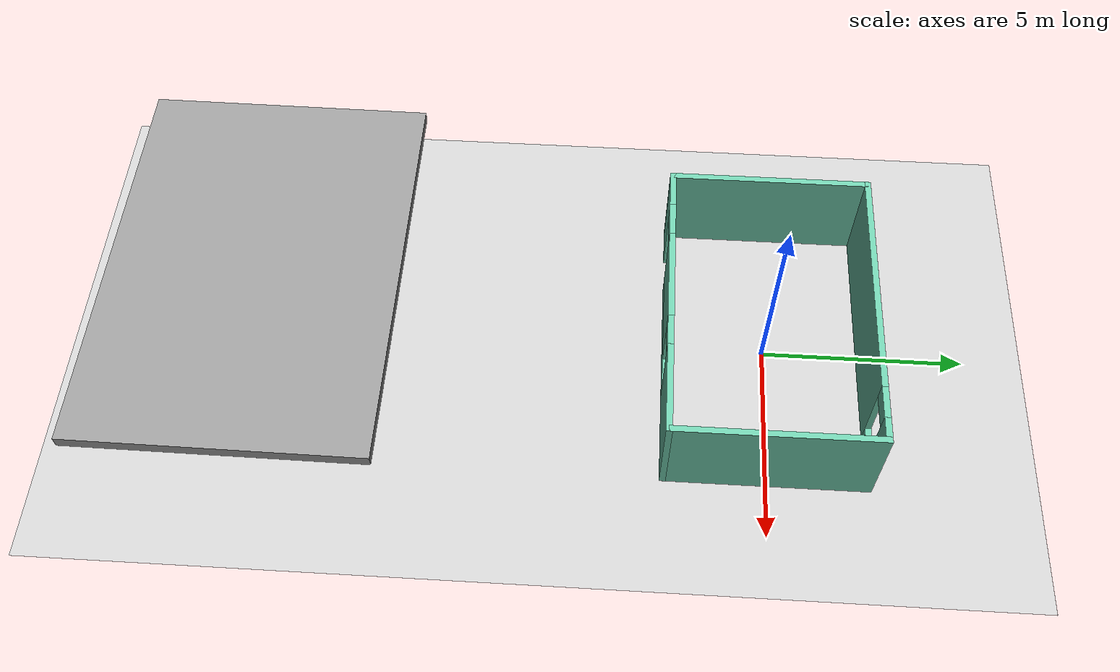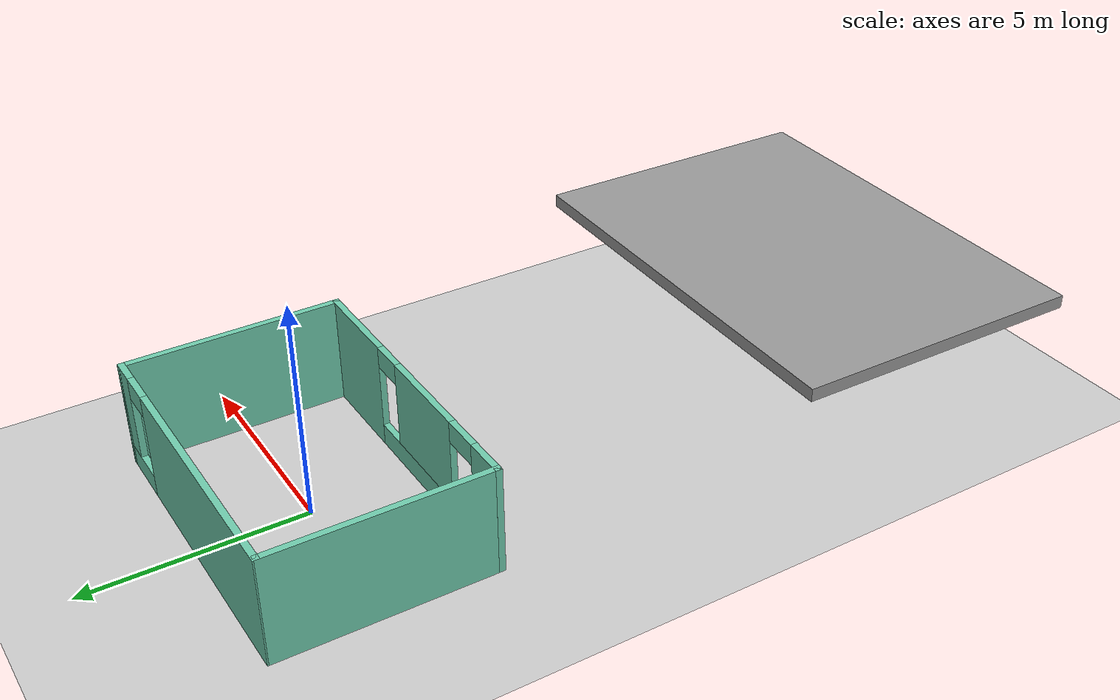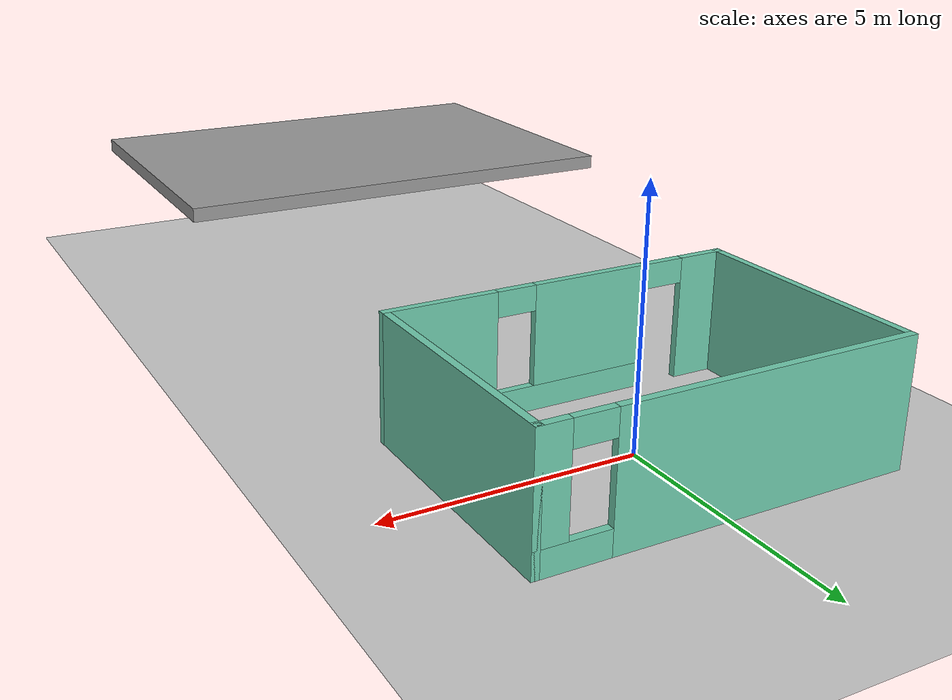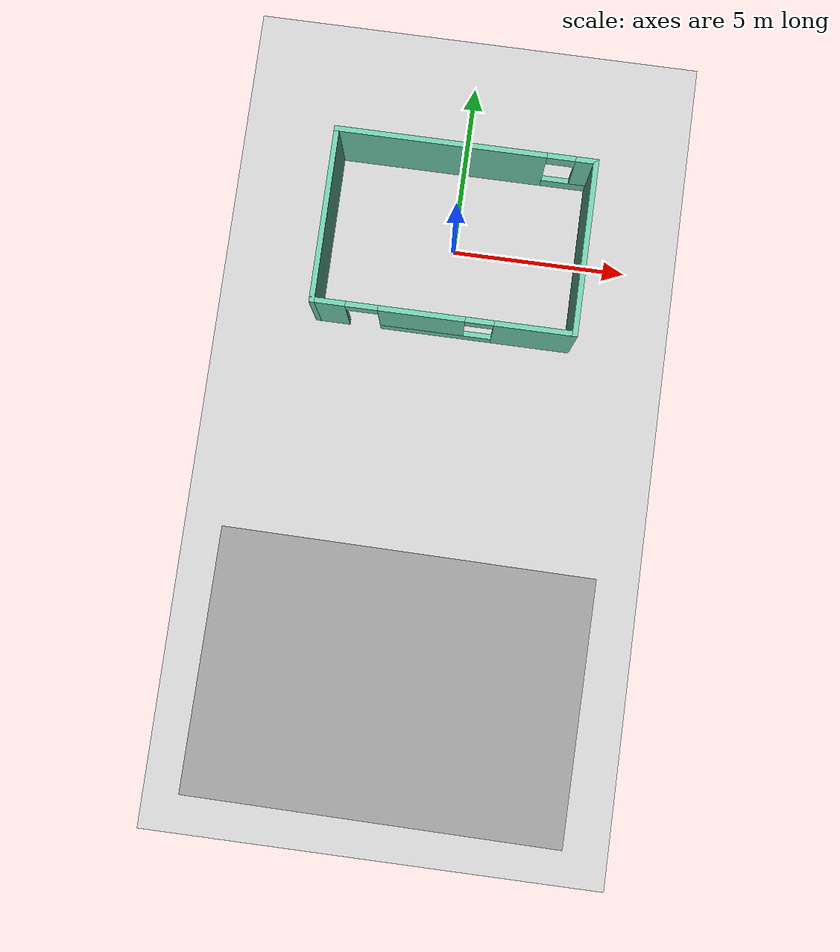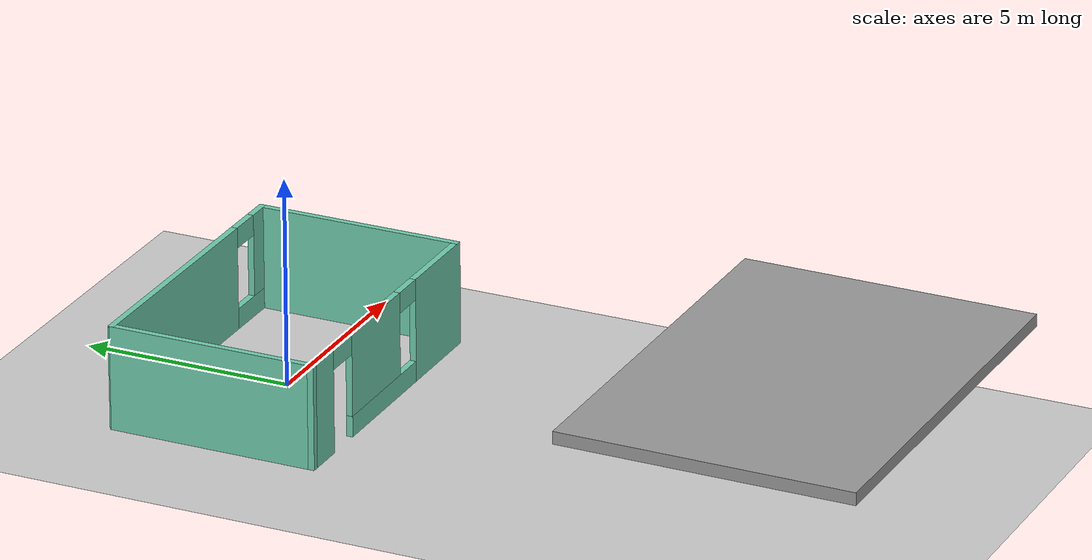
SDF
<sdf version="1.7">
 <world name="default">
  <light name="sun" type="directional">
   <pose>0 0 10 0 -0 0</pose>
   <diffuse>0.8 0.8 0.8 1</diffuse>
   <specular>0.2 0.2 0.2 1</specular>
   <attenuation>
    <range>1000</range>
    <constant>0.9</constant>
    <linear>0.01</linear>
    <quadratic>0.001</quadratic>
   </attenuation>
   <direction>-0.5 0.1 -0.9</direction>
   <spot><inner_angle>0</inner_angle><outer_angle>0</outer_angle><falloff>0</falloff></spot>
  </light>
  <model name="ground_plane">
   <static>1</static>
   <link name="link">
    <collision name="collision">
     <geometry><plane><normal>0 0 1</normal><size>100 100</size></plane></geometry>
     <surface><friction><ode><mu>100</mu><mu2>50</mu2></ode></friction></surface>
    </collision>
    <visual name="visual">
     <cast_shadows>0</cast_shadows>
     <geometry><plane><normal>0 0 1</normal><size>100 100</size></plane></geometry>
     <material>
      <script><uri>file://media/materials/scripts/gazebo.material</uri><name>Gazebo/Grey</name></script>
     </material>
    </visual>
   </link>
  </model>
  <gravity>0 0 -9.8</gravity>
  <magnetic_field>6e-06 2.3e-05 -4.2e-05</magnetic_field>
  <atmosphere type="adiabatic"/>
  <physics type="ode">
   <max_step_size>0.001</max_step_size>
   <real_time_factor>1</real_time_factor>
   <real_time_update_rate>1000</real_time_update_rate>
  </physics>
  <scene><ambient>0.4 0.4 0.4 1</ambient><background>0.7 0.7 0.7 1</background><shadows>1</shadows></scene>
  <spherical_coordinates>
   <surface_model>EARTH_WGS84</surface_model>
   <latitude_deg>0</latitude_deg>
   <longitude_deg>0</longitude_deg>
   <elevation>0</elevation>
   <heading_deg>0</heading_deg>
  </spherical_coordinates>
  <model name="Office_lab">
   <pose>-0.010529 -0.007082 0 0 -0 0</pose>
   <link name="Wall_11">
    <pose>-0 2.44 0 0 -0 0</pose>
    <visual name="Wall_11_Visual_0">
     <pose>-0.720548 0 1.25 0 -0 0</pose>
     <geometry><box><size>5.9589 0.15 2.5</size></box></geometry>
     <material>
      <script><uri>file://media/materials/scripts/gazebo.material</uri><name>Gazebo/Grey</name></script>
      <ambient>0.435294 0.796078 0.67451 1</ambient>
     </material>
     <meta><layer>0</layer></meta>
    </visual>
    <collision name="Wall_11_Collision_0">
     <geometry><box><size>5.9589 0.15 2.5</size></box></geometry>
     <pose>-0.720548 0 1.25 0 -0 0</pose>
    </collision>
    <visual name="Wall_11_Visual_1">
     <pose>2.97945 0 0.25 0 -0 0</pose>
     <geometry><box><size>1.4411 0.15 0.5</size></box></geometry>
     <material>
      <script><uri>file://media/materials/scripts/gazebo.material</uri><name>Gazebo/Grey</name></script>
      <ambient>0.435294 0.796078 0.67451 1</ambient>
     </material>
     <meta><layer>0</layer></meta>
    </visual>
    <collision name="Wall_11_Collision_1">
     <geometry><box><size>1.4411 0.15 0.5</size></box></geometry>
     <pose>2.97945 0 0.25 0 -0 0</pose>
    </collision>
    <visual name="Wall_11_Visual_2">
     <pose>3.37945 0 1.5 0 -0 0</pose>
     <geometry><box><size>0.641096 0.15 2</size></box></geometry>
     <material>
      <script><uri>file://media/materials/scripts/gazebo.material</uri><name>Gazebo/Grey</name></script>
      <ambient>0.435294 0.796078 0.67451 1</ambient>
     </material>
     <meta><layer>0</layer></meta>
    </visual>
    <collision name="Wall_11_Collision_2">
     <geometry><box><size>0.641096 0.15 2</size></box></geometry>
     <pose>3.37945 0 1.5 0 -0 0</pose>
    </collision>
    <visual name="Wall_11_Visual_3">
     <pose>2.6589 0 2.25 0 -0 0</pose>
     <geometry><box><size>0.8 0.15 0.5</size></box></geometry>
     <material>
      <script><uri>file://media/materials/scripts/gazebo.material</uri><name>Gazebo/Grey</name></script>
      <ambient>0.435294 0.796078 0.67451 1</ambient>
     </material>
     <meta><layer>0</layer></meta>
    </visual>
    <collision name="Wall_11_Collision_3">
     <geometry><box><size>0.8 0.15 0.5</size></box></geometry>
     <pose>2.6589 0 2.25 0 -0 0</pose>
    </collision>
   </link>
   <link name="Wall_13">
    <collision name="Wall_13_Collision">
     <geometry><box><size>5.03 0.15 2.5</size></box></geometry>
     <pose>0 0 1.25 0 -0 0</pose>
    </collision>
    <visual name="Wall_13_Visual">
     <pose>0 0 1.25 0 -0 0</pose>
     <geometry><box><size>5.03 0.15 2.5</size></box></geometry>
     <material>
      <script><uri>file://media/materials/scripts/gazebo.material</uri><name>Gazebo/Grey</name></script>
      <ambient>0.435294 0.796078 0.67451 1</ambient>
     </material>
     <meta><layer>0</layer></meta>
    </visual>
    <pose>3.625 -0 0 0 -0 -1.5708</pose>
   </link>
   <link name="Wall_14">
    <pose>-0 -2.44 0 0 -0 3.14159</pose>
    <visual name="Wall_14_Visual_0">
     <pose>-2.55059 0 1.25 0 -0 0</pose>
     <geometry><box><size>2.29888 0.15 2.5</size></box></geometry>
     <material>
      <script><uri>file://media/materials/scripts/gazebo.material</uri><name>Gazebo/Grey</name></script>
      <ambient>0.435294 0.796078 0.67451 1</ambient>
     </material>
     <meta><layer>0</layer></meta>
    </visual>
    <collision name="Wall_14_Collision_0">
     <geometry><box><size>2.29888 0.15 2.5</size></box></geometry>
     <pose>-2.55059 0 1.25 0 -0 0</pose>
    </collision>
    <visual name="Wall_14_Visual_1">
     <pose>3.20178 0 1.25 0 -0 0</pose>
     <geometry><box><size>0.996509 0.15 2.5</size></box></geometry>
     <material>
      <script><uri>file://media/materials/scripts/gazebo.material</uri><name>Gazebo/Grey</name></script>
      <ambient>0.435294 0.796078 0.67451 1</ambient>
     </material>
     <meta><layer>0</layer></meta>
    </visual>
    <collision name="Wall_14_Collision_1">
     <geometry><box><size>0.996509 0.15 2.5</size></box></geometry>
     <pose>3.20178 0 1.25 0 -0 0</pose>
    </collision>
    <visual name="Wall_14_Visual_2">
     <pose>0.201186 0 0.25 0 -0 0</pose>
     <geometry><box><size>3.20467 0.15 0.5</size></box></geometry>
     <material>
      <script><uri>file://media/materials/scripts/gazebo.material</uri><name>Gazebo/Grey</name></script>
      <ambient>0.435294 0.796078 0.67451 1</ambient>
     </material>
     <meta><layer>0</layer></meta>
    </visual>
    <collision name="Wall_14_Collision_2">
     <geometry><box><size>3.20467 0.15 0.5</size></box></geometry>
     <pose>0.201186 0 0.25 0 -0 0</pose>
    </collision>
    <visual name="Wall_14_Visual_3">
     <pose>0.601186 0 1.5 0 -0 0</pose>
     <geometry><box><size>2.40467 0.15 2</size></box></geometry>
     <material>
      <script><uri>file://media/materials/scripts/gazebo.material</uri><name>Gazebo/Grey</name></script>
      <ambient>0.435294 0.796078 0.67451 1</ambient>
     </material>
     <meta><layer>0</layer></meta>
    </visual>
    <collision name="Wall_14_Collision_3">
     <geometry><box><size>2.40467 0.15 2</size></box></geometry>
     <pose>0.601186 0 1.5 0 -0 0</pose>
    </collision>
    <visual name="Wall_14_Visual_4">
     <pose>-1.00115 0 2.25 0 -0 0</pose>
     <geometry><box><size>0.8 0.15 0.5</size></box></geometry>
     <material>
      <script><uri>file://media/materials/scripts/gazebo.material</uri><name>Gazebo/Grey</name></script>
      <ambient>0.435294 0.796078 0.67451 1</ambient>
     </material>
     <meta><layer>0</layer></meta>
    </visual>
    <collision name="Wall_14_Collision_4">
     <geometry><box><size>0.8 0.15 0.5</size></box></geometry>
     <pose>-1.00115 0 2.25 0 -0 0</pose>
    </collision>
    <visual name="Wall_14_Visual_5">
     <pose>2.25352 0 2.25 0 -0 0</pose>
     <geometry><box><size>0.9 0.15 0.5</size></box></geometry>
     <material>
      <script><uri>file://media/materials/scripts/gazebo.material</uri><name>Gazebo/Grey</name></script>
      <ambient>0.435294 0.796078 0.67451 1</ambient>
     </material>
     <meta><layer>0</layer></meta>
    </visual>
    <collision name="Wall_14_Collision_5">
     <geometry><box><size>0.9 0.15 0.5</size></box></geometry>
     <pose>2.25352 0 2.25 0 -0 0</pose>
    </collision>
   </link>
   <link name="Wall_9">
    <collision name="Wall_9_Collision">
     <geometry><box><size>5 0.15 2.5</size></box></geometry>
     <pose>0 0 1.25 0 -0 0</pose>
    </collision>
    <visual name="Wall_9_Visual">
     <pose>0 0 1.25 0 -0 0</pose>
     <geometry><box><size>5 0.15 2.5</size></box></geometry>
     <material>
      <script><uri>file://media/materials/scripts/gazebo.material</uri><name>Gazebo/Grey</name></script>
      <ambient>0.435294 0.796078 0.67451 1</ambient>
     </material>
     <meta><layer>0</layer></meta>
    </visual>
    <pose>-3.625 -0.015 0 0 -0 1.5708</pose>
   </link>
   <static>1</static>
  </model>
  <model name="techo_office">
   <link name="link">
    <inertial>
     <mass>1</mass>
     <inertia>
      <ixx>0.166667</ixx>
      <ixy>0</ixy>
      <ixz>0</ixz>
      <iyy>0.166667</iyy>
      <iyz>0</iyz>
      <izz>0.166667</izz>
     </inertia>
    </inertial>
    <visual name="visual">
     <geometry><box><size>7 10 0.3</size></box></geometry>
     <material>
      <script><name>Gazebo/Grey</name><uri>file://media/materials/scripts/gazebo.material</uri></script>
      <shader type="pixel"><normal_map>__default__</normal_map></shader>
      <ambient>1 1 1 1</ambient>
      <diffuse>0.7 0.7 0.7 1</diffuse>
      <specular>0.01 0.01 0.01 1</specular>
      <emissive>0 0 0 1</emissive>
     </material>
    </visual>
    <collision name="collision">
     <geometry><box><size>7 10 0.3</size></box></geometry>
     <surface>
      <friction>
       <ode><mu>1</mu><mu2>1</mu2><fdir1>0 0 0</fdir1><slip1>0</slip1><slip2>0</slip2></ode>
       <torsional>
        <coefficient>1</coefficient>
        <patch_radius>0</patch_radius>
        <surface_radius>0</surface_radius>
        <use_patch_radius>1</use_patch_radius>
        <ode><slip>0</slip></ode>
       </torsional>
      </friction>
      <bounce><restitution_coefficient>0</restitution_coefficient><threshold>1e+06</threshold></bounce>
      <contact>
       <collide_without_contact>0</collide_without_contact>
       <collide_without_contact_bitmask>1</collide_without_contact_bitmask>
       <collide_bitmask>1</collide_bitmask>
       <ode>
        <soft_cfm>0</soft_cfm>
        <soft_erp>0.2</soft_erp>
        <kp>1e+13</kp>
        <kd>1</kd>
        <max_vel>0.01</max_vel>
        <min_depth>0</min_depth>
       </ode>
       <bullet>
        <split_impulse>1</split_impulse>
        <split_impulse_penetration_threshold>-0.01</split_impulse_penetration_threshold>
        <soft_cfm>0</soft_cfm>
        <soft_erp>0.2</soft_erp>
        <kp>1e+13</kp>
        <kd>1</kd>
       </bullet>
      </contact>
     </surface>
    </collision>
   </link>
   <static>1</static>
   <pose>-0.103278 -12.4179 2.65 0 0 -1.57911</pose>
  </model>
 </world>
</sdf>
